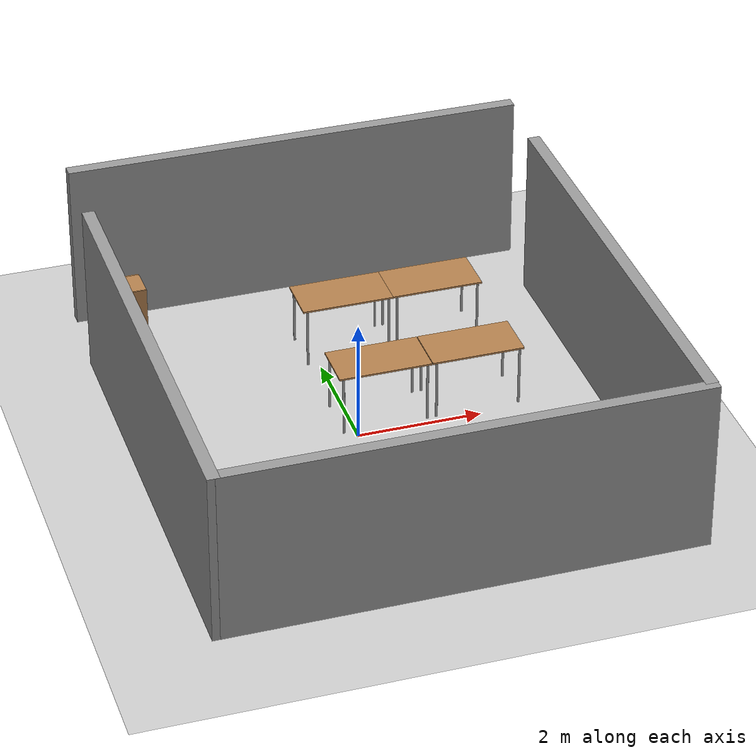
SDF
<sdf version="1.5">
 <world name="default">
  <light name="sun" type="directional">
   <pose>0 0 10 0 -0 0</pose>
   <diffuse>0.8 0.8 0.8 1</diffuse>
   <specular>0.2 0.2 0.2 1</specular>
   <attenuation>
    <range>1000</range>
    <constant>0.9</constant>
    <linear>0.01</linear>
    <quadratic>0.001</quadratic>
   </attenuation>
   <direction>-0.5 0.1 -0.9</direction>
  </light>
  <model name="ground_plane">
   <static>1</static>
   <link name="link">
    <collision name="collision">
     <geometry><plane><normal>0 0 1</normal><size>100 100</size></plane></geometry>
     <surface><friction><ode><mu>100</mu><mu2>50</mu2></ode></friction></surface>
    </collision>
    <visual name="visual">
     <cast_shadows>0</cast_shadows>
     <geometry><plane><normal>0 0 1</normal><size>100 100</size></plane></geometry>
     <material>
      <script><uri>file://media/materials/scripts/gazebo.material</uri><name>Gazebo/Grey</name></script>
     </material>
    </visual>
   </link>
  </model>
  <physics name="default_physics" default="0" type="ode">
   <max_step_size>0.001</max_step_size>
   <real_time_factor>1</real_time_factor>
   <real_time_update_rate>1000</real_time_update_rate>
   <gravity>0 0 -9.8</gravity>
   <magnetic_field>6e-06 2.3e-05 -4.2e-05</magnetic_field>
  </physics>
  <scene><ambient>0.4 0.4 0.4 1</ambient><background>0.7 0.7 0.7 1</background><shadows>1</shadows></scene>
  <spherical_coordinates>
   <surface_model>EARTH_WGS84</surface_model>
   <latitude_deg>0</latitude_deg>
   <longitude_deg>0</longitude_deg>
   <elevation>0</elevation>
   <heading_deg>0</heading_deg>
  </spherical_coordinates>
  <model name="grey_wall">
   <static>1</static>
   <link name="link">
    <pose>0 0 1.4 0 -0 0</pose>
    <collision name="collision"><geometry><box><size>7.5 0.2 2.8</size></box></geometry></collision>
    <visual name="visual">
     <cast_shadows>0</cast_shadows>
     <geometry><box><size>7.5 0.2 2.8</size></box></geometry>
     <material>
      <script>
       <uri>model://grey_wall/materials/scripts</uri>
       <uri>model://grey_wall/materials/textures</uri>
       <name>vrc/grey_wall</name>
      </script>
     </material>
    </visual>
   </link>
   <pose>0.374436 -4.14865 0 0 -0 0</pose>
  </model>
  <model name="grey_wall_0">
   <static>1</static>
   <link name="link">
    <pose>0 0 1.4 0 -0 0</pose>
    <collision name="collision"><geometry><box><size>7.5 0.2 2.8</size></box></geometry></collision>
    <visual name="visual">
     <cast_shadows>0</cast_shadows>
     <geometry><box><size>7.5 0.2 2.8</size></box></geometry>
     <material>
      <script>
       <uri>model://grey_wall/materials/scripts</uri>
       <uri>model://grey_wall/materials/textures</uri>
       <name>vrc/grey_wall</name>
      </script>
     </material>
    </visual>
   </link>
   <pose>4.03141 -0.371212 0 0 0 -1.56942</pose>
  </model>
  <model name="grey_wall_1">
   <static>1</static>
   <link name="link">
    <pose>0 0 1.4 0 -0 0</pose>
    <collision name="collision"><geometry><box><size>7.5 0.2 2.8</size></box></geometry></collision>
    <visual name="visual">
     <cast_shadows>0</cast_shadows>
     <geometry><box><size>7.5 0.2 2.8</size></box></geometry>
     <material>
      <script>
       <uri>model://grey_wall/materials/scripts</uri>
       <uri>model://grey_wall/materials/textures</uri>
       <name>vrc/grey_wall</name>
      </script>
     </material>
    </visual>
   </link>
   <pose>-3.39448 -0.497697 0 0 -0 1.56993</pose>
  </model>
  <model name="grey_wall_2">
   <static>1</static>
   <link name="link">
    <pose>0 0 1.4 0 -0 0</pose>
    <collision name="collision"><geometry><box><size>7.5 0.2 2.8</size></box></geometry></collision>
    <visual name="visual">
     <cast_shadows>0</cast_shadows>
     <geometry><box><size>7.5 0.2 2.8</size></box></geometry>
     <material>
      <script>
       <uri>model://grey_wall/materials/scripts</uri>
       <uri>model://grey_wall/materials/textures</uri>
       <name>vrc/grey_wall</name>
      </script>
     </material>
    </visual>
   </link>
   <pose>0.33749 4.595 0 0 -0 0</pose>
  </model>
  <model name="table">
   <static>1</static>
   <link name="link">
    <collision name="surface">
     <pose>0 0 1 0 -0 0</pose>
     <geometry><box><size>1.5 0.8 0.03</size></box></geometry>
     <surface><friction><ode><mu>0.6</mu><mu2>0.6</mu2></ode></friction></surface>
    </collision>
    <visual name="visual1">
     <pose>0 0 1 0 -0 0</pose>
     <geometry><box><size>1.5 0.8 0.03</size></box></geometry>
     <material>
      <script><uri>file://media/materials/scripts/gazebo.material</uri><name>Gazebo/Wood</name></script>
     </material>
    </visual>
    <collision name="front_left_leg">
     <pose>0.68 0.38 0.5 0 -0 0</pose>
     <geometry><cylinder><radius>0.02</radius><length>1</length></cylinder></geometry>
    </collision>
    <visual name="front_left_leg">
     <pose>0.68 0.38 0.5 0 -0 0</pose>
     <geometry><cylinder><radius>0.02</radius><length>1</length></cylinder></geometry>
     <material>
      <script><uri>file://media/materials/scripts/gazebo.material</uri><name>Gazebo/Grey</name></script>
     </material>
    </visual>
    <collision name="front_right_leg">
     <pose>0.68 -0.38 0.5 0 -0 0</pose>
     <geometry><cylinder><radius>0.02</radius><length>1</length></cylinder></geometry>
    </collision>
    <visual name="front_right_leg">
     <pose>0.68 -0.38 0.5 0 -0 0</pose>
     <geometry><cylinder><radius>0.02</radius><length>1</length></cylinder></geometry>
     <material>
      <script><uri>file://media/materials/scripts/gazebo.material</uri><name>Gazebo/Grey</name></script>
     </material>
    </visual>
    <collision name="back_right_leg">
     <pose>-0.68 -0.38 0.5 0 -0 0</pose>
     <geometry><cylinder><radius>0.02</radius><length>1</length></cylinder></geometry>
    </collision>
    <visual name="back_right_leg">
     <pose>-0.68 -0.38 0.5 0 -0 0</pose>
     <geometry><cylinder><radius>0.02</radius><length>1</length></cylinder></geometry>
     <material>
      <script><uri>file://media/materials/scripts/gazebo.material</uri><name>Gazebo/Grey</name></script>
     </material>
    </visual>
    <collision name="back_left_leg">
     <pose>-0.68 0.38 0.5 0 -0 0</pose>
     <geometry><cylinder><radius>0.02</radius><length>1</length></cylinder></geometry>
    </collision>
    <visual name="back_left_leg">
     <pose>-0.68 0.38 0.5 0 -0 0</pose>
     <geometry><cylinder><radius>0.02</radius><length>1</length></cylinder></geometry>
     <material>
      <script><uri>file://media/materials/scripts/gazebo.material</uri><name>Gazebo/Grey</name></script>
     </material>
    </visual>
   </link>
   <pose>2 2.54561 0 0 -0 0</pose>
  </model>
  <model name="table_0">
   <static>1</static>
   <link name="link">
    <collision name="surface">
     <pose>0 0 1 0 -0 0</pose>
     <geometry><box><size>1.5 0.8 0.03</size></box></geometry>
     <surface><friction><ode><mu>0.6</mu><mu2>0.6</mu2></ode></friction></surface>
    </collision>
    <visual name="visual1">
     <pose>0 0 1 0 -0 0</pose>
     <geometry><box><size>1.5 0.8 0.03</size></box></geometry>
     <material>
      <script><uri>file://media/materials/scripts/gazebo.material</uri><name>Gazebo/Wood</name></script>
     </material>
    </visual>
    <collision name="front_left_leg">
     <pose>0.68 0.38 0.5 0 -0 0</pose>
     <geometry><cylinder><radius>0.02</radius><length>1</length></cylinder></geometry>
    </collision>
    <visual name="front_left_leg">
     <pose>0.68 0.38 0.5 0 -0 0</pose>
     <geometry><cylinder><radius>0.02</radius><length>1</length></cylinder></geometry>
     <material>
      <script><uri>file://media/materials/scripts/gazebo.material</uri><name>Gazebo/Grey</name></script>
     </material>
    </visual>
    <collision name="front_right_leg">
     <pose>0.68 -0.38 0.5 0 -0 0</pose>
     <geometry><cylinder><radius>0.02</radius><length>1</length></cylinder></geometry>
    </collision>
    <visual name="front_right_leg">
     <pose>0.68 -0.38 0.5 0 -0 0</pose>
     <geometry><cylinder><radius>0.02</radius><length>1</length></cylinder></geometry>
     <material>
      <script><uri>file://media/materials/scripts/gazebo.material</uri><name>Gazebo/Grey</name></script>
     </material>
    </visual>
    <collision name="back_right_leg">
     <pose>-0.68 -0.38 0.5 0 -0 0</pose>
     <geometry><cylinder><radius>0.02</radius><length>1</length></cylinder></geometry>
    </collision>
    <visual name="back_right_leg">
     <pose>-0.68 -0.38 0.5 0 -0 0</pose>
     <geometry><cylinder><radius>0.02</radius><length>1</length></cylinder></geometry>
     <material>
      <script><uri>file://media/materials/scripts/gazebo.material</uri><name>Gazebo/Grey</name></script>
     </material>
    </visual>
    <collision name="back_left_leg">
     <pose>-0.68 0.38 0.5 0 -0 0</pose>
     <geometry><cylinder><radius>0.02</radius><length>1</length></cylinder></geometry>
    </collision>
    <visual name="back_left_leg">
     <pose>-0.68 0.38 0.5 0 -0 0</pose>
     <geometry><cylinder><radius>0.02</radius><length>1</length></cylinder></geometry>
     <material>
      <script><uri>file://media/materials/scripts/gazebo.material</uri><name>Gazebo/Grey</name></script>
     </material>
    </visual>
   </link>
   <pose>0.505694 2.54056 0 0 -0 0</pose>
  </model>
  <model name="table_1">
   <static>1</static>
   <link name="link">
    <collision name="surface">
     <pose>0 0 1 0 -0 0</pose>
     <geometry><box><size>1.5 0.8 0.03</size></box></geometry>
     <surface><friction><ode><mu>0.6</mu><mu2>0.6</mu2></ode></friction></surface>
    </collision>
    <visual name="visual1">
     <pose>0 0 1 0 -0 0</pose>
     <geometry><box><size>1.5 0.8 0.03</size></box></geometry>
     <material>
      <script><uri>file://media/materials/scripts/gazebo.material</uri><name>Gazebo/Wood</name></script>
     </material>
    </visual>
    <collision name="front_left_leg">
     <pose>0.68 0.38 0.5 0 -0 0</pose>
     <geometry><cylinder><radius>0.02</radius><length>1</length></cylinder></geometry>
    </collision>
    <visual name="front_left_leg">
     <pose>0.68 0.38 0.5 0 -0 0</pose>
     <geometry><cylinder><radius>0.02</radius><length>1</length></cylinder></geometry>
     <material>
      <script><uri>file://media/materials/scripts/gazebo.material</uri><name>Gazebo/Grey</name></script>
     </material>
    </visual>
    <collision name="front_right_leg">
     <pose>0.68 -0.38 0.5 0 -0 0</pose>
     <geometry><cylinder><radius>0.02</radius><length>1</length></cylinder></geometry>
    </collision>
    <visual name="front_right_leg">
     <pose>0.68 -0.38 0.5 0 -0 0</pose>
     <geometry><cylinder><radius>0.02</radius><length>1</length></cylinder></geometry>
     <material>
      <script><uri>file://media/materials/scripts/gazebo.material</uri><name>Gazebo/Grey</name></script>
     </material>
    </visual>
    <collision name="back_right_leg">
     <pose>-0.68 -0.38 0.5 0 -0 0</pose>
     <geometry><cylinder><radius>0.02</radius><length>1</length></cylinder></geometry>
    </collision>
    <visual name="back_right_leg">
     <pose>-0.68 -0.38 0.5 0 -0 0</pose>
     <geometry><cylinder><radius>0.02</radius><length>1</length></cylinder></geometry>
     <material>
      <script><uri>file://media/materials/scripts/gazebo.material</uri><name>Gazebo/Grey</name></script>
     </material>
    </visual>
    <collision name="back_left_leg">
     <pose>-0.68 0.38 0.5 0 -0 0</pose>
     <geometry><cylinder><radius>0.02</radius><length>1</length></cylinder></geometry>
    </collision>
    <visual name="back_left_leg">
     <pose>-0.68 0.38 0.5 0 -0 0</pose>
     <geometry><cylinder><radius>0.02</radius><length>1</length></cylinder></geometry>
     <material>
      <script><uri>file://media/materials/scripts/gazebo.material</uri><name>Gazebo/Grey</name></script>
     </material>
    </visual>
   </link>
   <pose>2 0.529393 0 0 -0 0</pose>
  </model>
  <model name="table_2">
   <static>1</static>
   <link name="link">
    <collision name="surface">
     <pose>0 0 1 0 -0 0</pose>
     <geometry><box><size>1.5 0.8 0.03</size></box></geometry>
     <surface><friction><ode><mu>0.6</mu><mu2>0.6</mu2></ode></friction></surface>
    </collision>
    <visual name="visual1">
     <pose>0 0 1 0 -0 0</pose>
     <geometry><box><size>1.5 0.8 0.03</size></box></geometry>
     <material>
      <script><uri>file://media/materials/scripts/gazebo.material</uri><name>Gazebo/Wood</name></script>
     </material>
    </visual>
    <collision name="front_left_leg">
     <pose>0.68 0.38 0.5 0 -0 0</pose>
     <geometry><cylinder><radius>0.02</radius><length>1</length></cylinder></geometry>
    </collision>
    <visual name="front_left_leg">
     <pose>0.68 0.38 0.5 0 -0 0</pose>
     <geometry><cylinder><radius>0.02</radius><length>1</length></cylinder></geometry>
     <material>
      <script><uri>file://media/materials/scripts/gazebo.material</uri><name>Gazebo/Grey</name></script>
     </material>
    </visual>
    <collision name="front_right_leg">
     <pose>0.68 -0.38 0.5 0 -0 0</pose>
     <geometry><cylinder><radius>0.02</radius><length>1</length></cylinder></geometry>
    </collision>
    <visual name="front_right_leg">
     <pose>0.68 -0.38 0.5 0 -0 0</pose>
     <geometry><cylinder><radius>0.02</radius><length>1</length></cylinder></geometry>
     <material>
      <script><uri>file://media/materials/scripts/gazebo.material</uri><name>Gazebo/Grey</name></script>
     </material>
    </visual>
    <collision name="back_right_leg">
     <pose>-0.68 -0.38 0.5 0 -0 0</pose>
     <geometry><cylinder><radius>0.02</radius><length>1</length></cylinder></geometry>
    </collision>
    <visual name="back_right_leg">
     <pose>-0.68 -0.38 0.5 0 -0 0</pose>
     <geometry><cylinder><radius>0.02</radius><length>1</length></cylinder></geometry>
     <material>
      <script><uri>file://media/materials/scripts/gazebo.material</uri><name>Gazebo/Grey</name></script>
     </material>
    </visual>
    <collision name="back_left_leg">
     <pose>-0.68 0.38 0.5 0 -0 0</pose>
     <geometry><cylinder><radius>0.02</radius><length>1</length></cylinder></geometry>
    </collision>
    <visual name="back_left_leg">
     <pose>-0.68 0.38 0.5 0 -0 0</pose>
     <geometry><cylinder><radius>0.02</radius><length>1</length></cylinder></geometry>
     <material>
      <script><uri>file://media/materials/scripts/gazebo.material</uri><name>Gazebo/Grey</name></script>
     </material>
    </visual>
   </link>
   <pose>0.489963 0.527417 0 0 -0 0</pose>
  </model>
  <model name="cabinet">
   <static>1</static>
   <link name="cabinet_bottom_plate">
    <inertial>
     <pose>0 0 -1 0 -0 0</pose>
     <inertia><ixx>2.05</ixx><ixy>0</ixy><ixz>0</ixz><iyy>2.05</iyy><iyz>0</iyz><izz>2.05</izz></inertia>
     <mass>25</mass>
    </inertial>
    <collision name="cabinet_bottom_plate_geom">
     <pose>0 0 0.01 0 -0 0</pose>
     <geometry><box><size>0.45 0.45 0.02</size></box></geometry>
    </collision>
    <visual name="cabinet_bottom_plate_geom_visual">
     <pose>0 0 0.01 0 -0 0</pose>
     <geometry><box><size>0.45 0.45 0.02</size></box></geometry>
     <material>
      <script><uri>file://media/materials/scripts/gazebo.material</uri><name>Gazebo/Wood</name></script>
     </material>
    </visual>
    <collision name="cabinet_bottom_plate_geom_cabinet_back_plate">
     <pose>0.235 0 0.51 0 -0 0</pose>
     <geometry><box><size>0.02 0.45 1.02</size></box></geometry>
    </collision>
    <visual name="cabinet_bottom_plate_geom_cabinet_back_plate_visual">
     <pose>0.235 0 0.51 0 -0 0</pose>
     <geometry><box><size>0.02 0.45 1.02</size></box></geometry>
     <material>
      <script><uri>file://media/materials/scripts/gazebo.material</uri><name>Gazebo/Wood</name></script>
     </material>
    </visual>
    <collision name="cabinet_bottom_plate_geom_cabinet_left_plate">
     <pose>0 0.235 0.51 0 -0 0</pose>
     <geometry><box><size>0.45 0.02 1.02</size></box></geometry>
    </collision>
    <visual name="cabinet_bottom_plate_geom_cabinet_left_plate_visual">
     <pose>0 0.235 0.51 0 -0 0</pose>
     <geometry><box><size>0.45 0.02 1.02</size></box></geometry>
     <material>
      <script><uri>file://media/materials/scripts/gazebo.material</uri><name>Gazebo/Wood</name></script>
     </material>
    </visual>
    <collision name="cabinet_bottom_plate_geom_cabinet_middle_plate">
     <pose>0 0 0.51 0 -0 0</pose>
     <geometry><box><size>0.45 0.45 0.02</size></box></geometry>
    </collision>
    <visual name="cabinet_bottom_plate_geom_cabinet_middle_plate_visual">
     <pose>0 0 0.51 0 -0 0</pose>
     <geometry><box><size>0.45 0.45 0.02</size></box></geometry>
     <material>
      <script><uri>file://media/materials/scripts/gazebo.material</uri><name>Gazebo/Wood</name></script>
     </material>
    </visual>
    <collision name="cabinet_bottom_plate_geom_cabinet_right_plate">
     <pose>0 -0.235 0.51 0 -0 0</pose>
     <geometry><box><size>0.45 0.02 1.02</size></box></geometry>
    </collision>
    <visual name="cabinet_bottom_plate_geom_cabinet_right_plate_visual">
     <pose>0 -0.235 0.51 0 -0 0</pose>
     <geometry><box><size>0.45 0.02 1.02</size></box></geometry>
     <material>
      <script><uri>file://media/materials/scripts/gazebo.material</uri><name>Gazebo/Wood</name></script>
     </material>
    </visual>
    <collision name="cabinet_bottom_plate_geom_cabinet_top_plate">
     <pose>0 0 1.01 0 -0 0</pose>
     <geometry><box><size>0.45 0.45 0.02</size></box></geometry>
    </collision>
    <visual name="cabinet_bottom_plate_geom_cabinet_top_plate_visual">
     <pose>0 0 1.01 0 -0 0</pose>
     <geometry><box><size>0.45 0.45 0.02</size></box></geometry>
     <material>
      <script><uri>file://media/materials/scripts/gazebo.material</uri><name>Gazebo/Wood</name></script>
     </material>
    </visual>
   </link>
   <pose>-3.0306 2.13051 0 0 0 -3.12</pose>
  </model>
  <model name="cabinet_0">
   <static>1</static>
   <link name="cabinet_bottom_plate">
    <inertial>
     <pose>0 0 -1 0 -0 0</pose>
     <inertia><ixx>2.05</ixx><ixy>0</ixy><ixz>0</ixz><iyy>2.05</iyy><iyz>0</iyz><izz>2.05</izz></inertia>
     <mass>25</mass>
    </inertial>
    <collision name="cabinet_bottom_plate_geom">
     <pose>0 0 0.01 0 -0 0</pose>
     <geometry><box><size>0.45 0.45 0.02</size></box></geometry>
    </collision>
    <visual name="cabinet_bottom_plate_geom_visual">
     <pose>0 0 0.01 0 -0 0</pose>
     <geometry><box><size>0.45 0.45 0.02</size></box></geometry>
     <material>
      <script><uri>file://media/materials/scripts/gazebo.material</uri><name>Gazebo/Wood</name></script>
     </material>
    </visual>
    <collision name="cabinet_bottom_plate_geom_cabinet_back_plate">
     <pose>0.235 0 0.51 0 -0 0</pose>
     <geometry><box><size>0.02 0.45 1.02</size></box></geometry>
    </collision>
    <visual name="cabinet_bottom_plate_geom_cabinet_back_plate_visual">
     <pose>0.235 0 0.51 0 -0 0</pose>
     <geometry><box><size>0.02 0.45 1.02</size></box></geometry>
     <material>
      <script><uri>file://media/materials/scripts/gazebo.material</uri><name>Gazebo/Wood</name></script>
     </material>
    </visual>
    <collision name="cabinet_bottom_plate_geom_cabinet_left_plate">
     <pose>0 0.235 0.51 0 -0 0</pose>
     <geometry><box><size>0.45 0.02 1.02</size></box></geometry>
    </collision>
    <visual name="cabinet_bottom_plate_geom_cabinet_left_plate_visual">
     <pose>0 0.235 0.51 0 -0 0</pose>
     <geometry><box><size>0.45 0.02 1.02</size></box></geometry>
     <material>
      <script><uri>file://media/materials/scripts/gazebo.material</uri><name>Gazebo/Wood</name></script>
     </material>
    </visual>
    <collision name="cabinet_bottom_plate_geom_cabinet_middle_plate">
     <pose>0 0 0.51 0 -0 0</pose>
     <geometry><box><size>0.45 0.45 0.02</size></box></geometry>
    </collision>
    <visual name="cabinet_bottom_plate_geom_cabinet_middle_plate_visual">
     <pose>0 0 0.51 0 -0 0</pose>
     <geometry><box><size>0.45 0.45 0.02</size></box></geometry>
     <material>
      <script><uri>file://media/materials/scripts/gazebo.material</uri><name>Gazebo/Wood</name></script>
     </material>
    </visual>
    <collision name="cabinet_bottom_plate_geom_cabinet_right_plate">
     <pose>0 -0.235 0.51 0 -0 0</pose>
     <geometry><box><size>0.45 0.02 1.02</size></box></geometry>
    </collision>
    <visual name="cabinet_bottom_plate_geom_cabinet_right_plate_visual">
     <pose>0 -0.235 0.51 0 -0 0</pose>
     <geometry><box><size>0.45 0.02 1.02</size></box></geometry>
     <material>
      <script><uri>file://media/materials/scripts/gazebo.material</uri><name>Gazebo/Wood</name></script>
     </material>
    </visual>
    <collision name="cabinet_bottom_plate_geom_cabinet_top_plate">
     <pose>0 0 1.01 0 -0 0</pose>
     <geometry><box><size>0.45 0.45 0.02</size></box></geometry>
    </collision>
    <visual name="cabinet_bottom_plate_geom_cabinet_top_plate_visual">
     <pose>0 0 1.01 0 -0 0</pose>
     <geometry><box><size>0.45 0.45 0.02</size></box></geometry>
     <material>
      <script><uri>file://media/materials/scripts/gazebo.material</uri><name>Gazebo/Wood</name></script>
     </material>
    </visual>
   </link>
   <pose>-3.04952 2.13808 1.05036 0 0 -3.1248</pose>
  </model>
 </world>
</sdf>
